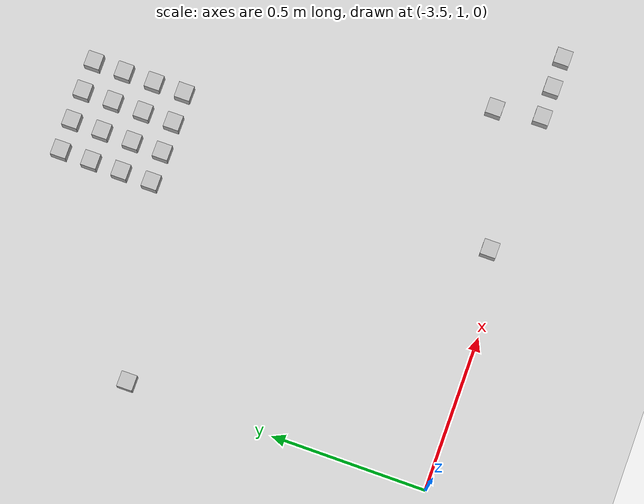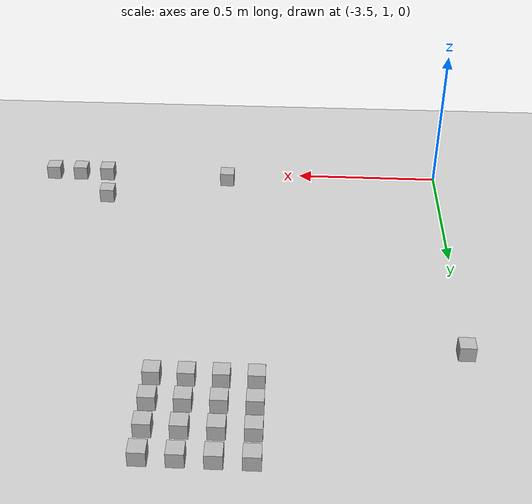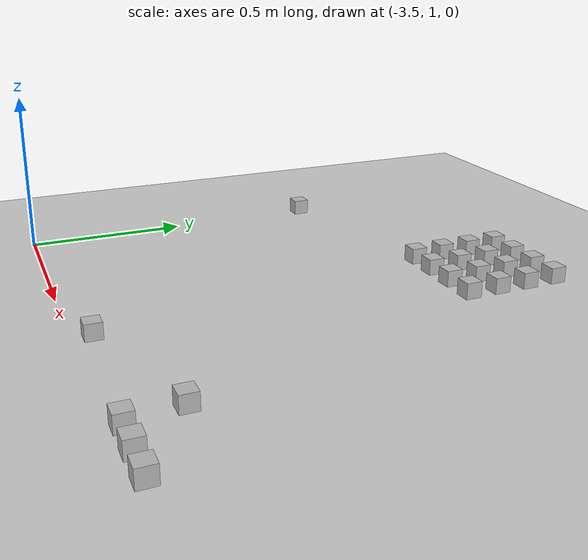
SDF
<sdf version="1.6">
 <world name="default">
  <model name="ground_plane">
   <static>1</static>
   <link name="link">
    <collision name="collision">
     <geometry><plane><normal>0 0 1</normal><size>100 100</size></plane></geometry>
     <surface><friction><ode><mu>100</mu><mu2>50</mu2></ode></friction></surface>
    </collision>
    <visual name="visual">
     <cast_shadows>0</cast_shadows>
     <geometry><plane><normal>0 0 1</normal><size>100 100</size></plane></geometry>
     <material>
      <script><uri>file://media/materials/scripts/gazebo.material</uri><name>Gazebo/Grey</name></script>
     </material>
    </visual>
   </link>
  </model>
  <model name="at25">
   <static>0</static>
   <link name="link">
    <inertial>
     <mass>0.01</mass>
     <inertia><ixx>4e-05</ixx><ixy>0</ixy><ixz>0</ixz><iyy>4e-05</iyy><iyz>0</iyz><izz>4e-05</izz></inertia>
    </inertial>
    <visual name="visual">
     <geometry><box><size>0.05 0.05 0.05</size></box></geometry>
     <material>
      <script>
       <uri>model://at0/materials/scripts</uri>
       <uri>model://at0/materials/textures</uri>
       <name>at0/Diffuse</name>
      </script>
     </material>
    </visual>
    <collision name="collision">
     <geometry><box><size>0.05 0.05 0.05</size></box></geometry>
     <surface><friction><ode><mu>0.8</mu><mu2>0.7</mu2></ode></friction></surface>
    </collision>
   </link>
   <pose>-2.28131 1.03932 0.025 0 -0 0</pose>
  </model>
  <model name="at26">
   <static>0</static>
   <link name="link">
    <inertial>
     <mass>0.01</mass>
     <inertia><ixx>4e-05</ixx><ixy>0</ixy><ixz>0</ixz><iyy>4e-05</iyy><iyz>0</iyz><izz>4e-05</izz></inertia>
    </inertial>
    <visual name="visual">
     <geometry><box><size>0.05 0.05 0.05</size></box></geometry>
     <material>
      <script>
       <uri>model://at0/materials/scripts</uri>
       <uri>model://at0/materials/textures</uri>
       <name>at0/Diffuse</name>
      </script>
     </material>
    </visual>
    <collision name="collision">
     <geometry><box><size>0.05 0.05 0.05</size></box></geometry>
     <surface><friction><ode><mu>0.8</mu><mu2>0.7</mu2></ode></friction></surface>
    </collision>
   </link>
   <pose>-2.18131 1.03932 0.025 0 -0 0</pose>
  </model>
  <model name="at27">
   <static>0</static>
   <link name="link">
    <inertial>
     <mass>0.01</mass>
     <inertia><ixx>4e-05</ixx><ixy>0</ixy><ixz>0</ixz><iyy>4e-05</iyy><iyz>0</iyz><izz>4e-05</izz></inertia>
    </inertial>
    <visual name="visual">
     <geometry><box><size>0.05 0.05 0.05</size></box></geometry>
     <material>
      <script>
       <uri>model://at0/materials/scripts</uri>
       <uri>model://at0/materials/textures</uri>
       <name>at0/Diffuse</name>
      </script>
     </material>
    </visual>
    <collision name="collision">
     <geometry><box><size>0.05 0.05 0.05</size></box></geometry>
     <surface><friction><ode><mu>0.8</mu><mu2>0.7</mu2></ode></friction></surface>
    </collision>
   </link>
   <pose>-2.08131 1.03932 0.025 0 -0 0</pose>
  </model>
  <model name="at48">
   <static>0</static>
   <link name="link">
    <inertial>
     <mass>0.01</mass>
     <inertia><ixx>4e-05</ixx><ixy>0</ixy><ixz>0</ixz><iyy>4e-05</iyy><iyz>0</iyz><izz>4e-05</izz></inertia>
    </inertial>
    <visual name="visual">
     <geometry><box><size>0.05 0.05 0.05</size></box></geometry>
     <material>
      <script>
       <uri>model://at0/materials/scripts</uri>
       <uri>model://at0/materials/textures</uri>
       <name>at0/Diffuse</name>
      </script>
     </material>
    </visual>
    <collision name="collision">
     <geometry><box><size>0.05 0.05 0.05</size></box></geometry>
     <surface><friction><ode><mu>0.8</mu><mu2>0.7</mu2></ode></friction></surface>
    </collision>
   </link>
   <pose>-2.88153 2.11714 0.025 0 -0 0</pose>
  </model>
  <model name="at49">
   <static>0</static>
   <link name="link">
    <inertial>
     <mass>0.01</mass>
     <inertia><ixx>4e-05</ixx><ixy>0</ixy><ixz>0</ixz><iyy>4e-05</iyy><iyz>0</iyz><izz>4e-05</izz></inertia>
    </inertial>
    <visual name="visual">
     <geometry><box><size>0.05 0.05 0.05</size></box></geometry>
     <material>
      <script>
       <uri>model://at0/materials/scripts</uri>
       <uri>model://at0/materials/textures</uri>
       <name>at0/Diffuse</name>
      </script>
     </material>
    </visual>
    <collision name="collision">
     <geometry><box><size>0.05 0.05 0.05</size></box></geometry>
     <surface><friction><ode><mu>0.8</mu><mu2>0.7</mu2></ode></friction></surface>
    </collision>
   </link>
   <pose>-2.78153 2.11714 0.025 0 -0 0</pose>
  </model>
  <model name="at50">
   <static>0</static>
   <link name="link">
    <inertial>
     <mass>0.01</mass>
     <inertia><ixx>4e-05</ixx><ixy>0</ixy><ixz>0</ixz><iyy>4e-05</iyy><iyz>0</iyz><izz>4e-05</izz></inertia>
    </inertial>
    <visual name="visual">
     <geometry><box><size>0.05 0.05 0.05</size></box></geometry>
     <material>
      <script>
       <uri>model://at0/materials/scripts</uri>
       <uri>model://at0/materials/textures</uri>
       <name>at0/Diffuse</name>
      </script>
     </material>
    </visual>
    <collision name="collision">
     <geometry><box><size>0.05 0.05 0.05</size></box></geometry>
     <surface><friction><ode><mu>0.8</mu><mu2>0.7</mu2></ode></friction></surface>
    </collision>
   </link>
   <pose>-2.68153 2.11714 0.025 0 -0 0</pose>
  </model>
  <model name="at51">
   <static>0</static>
   <link name="link">
    <inertial>
     <mass>0.01</mass>
     <inertia><ixx>4e-05</ixx><ixy>0</ixy><ixz>0</ixz><iyy>4e-05</iyy><iyz>0</iyz><izz>4e-05</izz></inertia>
    </inertial>
    <visual name="visual">
     <geometry><box><size>0.05 0.05 0.05</size></box></geometry>
     <material>
      <script>
       <uri>model://at0/materials/scripts</uri>
       <uri>model://at0/materials/textures</uri>
       <name>at0/Diffuse</name>
      </script>
     </material>
    </visual>
    <collision name="collision">
     <geometry><box><size>0.05 0.05 0.05</size></box></geometry>
     <surface><friction><ode><mu>0.8</mu><mu2>0.7</mu2></ode></friction></surface>
    </collision>
   </link>
   <pose>-2.58153 2.11714 0.025 0 -0 0</pose>
  </model>
  <model name="at52">
   <static>0</static>
   <link name="link">
    <inertial>
     <mass>0.01</mass>
     <inertia><ixx>4e-05</ixx><ixy>0</ixy><ixz>0</ixz><iyy>4e-05</iyy><iyz>0</iyz><izz>4e-05</izz></inertia>
    </inertial>
    <visual name="visual">
     <geometry><box><size>0.05 0.05 0.05</size></box></geometry>
     <material>
      <script>
       <uri>model://at0/materials/scripts</uri>
       <uri>model://at0/materials/textures</uri>
       <name>at0/Diffuse</name>
      </script>
     </material>
    </visual>
    <collision name="collision">
     <geometry><box><size>0.05 0.05 0.05</size></box></geometry>
     <surface><friction><ode><mu>0.8</mu><mu2>0.7</mu2></ode></friction></surface>
    </collision>
   </link>
   <pose>-2.88153 2.21714 0.025 0 -0 0</pose>
  </model>
  <model name="at53">
   <static>0</static>
   <link name="link">
    <inertial>
     <mass>0.01</mass>
     <inertia><ixx>4e-05</ixx><ixy>0</ixy><ixz>0</ixz><iyy>4e-05</iyy><iyz>0</iyz><izz>4e-05</izz></inertia>
    </inertial>
    <visual name="visual">
     <geometry><box><size>0.05 0.05 0.05</size></box></geometry>
     <material>
      <script>
       <uri>model://at0/materials/scripts</uri>
       <uri>model://at0/materials/textures</uri>
       <name>at0/Diffuse</name>
      </script>
     </material>
    </visual>
    <collision name="collision">
     <geometry><box><size>0.05 0.05 0.05</size></box></geometry>
     <surface><friction><ode><mu>0.8</mu><mu2>0.7</mu2></ode></friction></surface>
    </collision>
   </link>
   <pose>-2.78153 2.21714 0.025 0 -0 0</pose>
  </model>
  <model name="at54">
   <static>0</static>
   <link name="link">
    <inertial>
     <mass>0.01</mass>
     <inertia><ixx>4e-05</ixx><ixy>0</ixy><ixz>0</ixz><iyy>4e-05</iyy><iyz>0</iyz><izz>4e-05</izz></inertia>
    </inertial>
    <visual name="visual">
     <geometry><box><size>0.05 0.05 0.05</size></box></geometry>
     <material>
      <script>
       <uri>model://at0/materials/scripts</uri>
       <uri>model://at0/materials/textures</uri>
       <name>at0/Diffuse</name>
      </script>
     </material>
    </visual>
    <collision name="collision">
     <geometry><box><size>0.05 0.05 0.05</size></box></geometry>
     <surface><friction><ode><mu>0.8</mu><mu2>0.7</mu2></ode></friction></surface>
    </collision>
   </link>
   <pose>-2.68153 2.21714 0.025 0 -0 0</pose>
  </model>
  <model name="at55">
   <static>0</static>
   <link name="link">
    <inertial>
     <mass>0.01</mass>
     <inertia><ixx>4e-05</ixx><ixy>0</ixy><ixz>0</ixz><iyy>4e-05</iyy><iyz>0</iyz><izz>4e-05</izz></inertia>
    </inertial>
    <visual name="visual">
     <geometry><box><size>0.05 0.05 0.05</size></box></geometry>
     <material>
      <script>
       <uri>model://at0/materials/scripts</uri>
       <uri>model://at0/materials/textures</uri>
       <name>at0/Diffuse</name>
      </script>
     </material>
    </visual>
    <collision name="collision">
     <geometry><box><size>0.05 0.05 0.05</size></box></geometry>
     <surface><friction><ode><mu>0.8</mu><mu2>0.7</mu2></ode></friction></surface>
    </collision>
   </link>
   <pose>-2.58153 2.21714 0.025 0 -0 0</pose>
  </model>
  <model name="at56">
   <static>0</static>
   <link name="link">
    <inertial>
     <mass>0.01</mass>
     <inertia><ixx>4e-05</ixx><ixy>0</ixy><ixz>0</ixz><iyy>4e-05</iyy><iyz>0</iyz><izz>4e-05</izz></inertia>
    </inertial>
    <visual name="visual">
     <geometry><box><size>0.05 0.05 0.05</size></box></geometry>
     <material>
      <script>
       <uri>model://at0/materials/scripts</uri>
       <uri>model://at0/materials/textures</uri>
       <name>at0/Diffuse</name>
      </script>
     </material>
    </visual>
    <collision name="collision">
     <geometry><box><size>0.05 0.05 0.05</size></box></geometry>
     <surface><friction><ode><mu>0.8</mu><mu2>0.7</mu2></ode></friction></surface>
    </collision>
   </link>
   <pose>-2.88153 2.31714 0.025 0 -0 0</pose>
  </model>
  <model name="at57">
   <static>0</static>
   <link name="link">
    <inertial>
     <mass>0.01</mass>
     <inertia><ixx>4e-05</ixx><ixy>0</ixy><ixz>0</ixz><iyy>4e-05</iyy><iyz>0</iyz><izz>4e-05</izz></inertia>
    </inertial>
    <visual name="visual">
     <geometry><box><size>0.05 0.05 0.05</size></box></geometry>
     <material>
      <script>
       <uri>model://at0/materials/scripts</uri>
       <uri>model://at0/materials/textures</uri>
       <name>at0/Diffuse</name>
      </script>
     </material>
    </visual>
    <collision name="collision">
     <geometry><box><size>0.05 0.05 0.05</size></box></geometry>
     <surface><friction><ode><mu>0.8</mu><mu2>0.7</mu2></ode></friction></surface>
    </collision>
   </link>
   <pose>-2.78153 2.31714 0.025 0 -0 0</pose>
  </model>
  <model name="at58">
   <static>0</static>
   <link name="link">
    <inertial>
     <mass>0.01</mass>
     <inertia><ixx>4e-05</ixx><ixy>0</ixy><ixz>0</ixz><iyy>4e-05</iyy><iyz>0</iyz><izz>4e-05</izz></inertia>
    </inertial>
    <visual name="visual">
     <geometry><box><size>0.05 0.05 0.05</size></box></geometry>
     <material>
      <script>
       <uri>model://at0/materials/scripts</uri>
       <uri>model://at0/materials/textures</uri>
       <name>at0/Diffuse</name>
      </script>
     </material>
    </visual>
    <collision name="collision">
     <geometry><box><size>0.05 0.05 0.05</size></box></geometry>
     <surface><friction><ode><mu>0.8</mu><mu2>0.7</mu2></ode></friction></surface>
    </collision>
   </link>
   <pose>-2.68153 2.31714 0.025 0 -0 0</pose>
  </model>
  <model name="at59">
   <static>0</static>
   <link name="link">
    <inertial>
     <mass>0.01</mass>
     <inertia><ixx>4e-05</ixx><ixy>0</ixy><ixz>0</ixz><iyy>4e-05</iyy><iyz>0</iyz><izz>4e-05</izz></inertia>
    </inertial>
    <visual name="visual">
     <geometry><box><size>0.05 0.05 0.05</size></box></geometry>
     <material>
      <script>
       <uri>model://at0/materials/scripts</uri>
       <uri>model://at0/materials/textures</uri>
       <name>at0/Diffuse</name>
      </script>
     </material>
    </visual>
    <collision name="collision">
     <geometry><box><size>0.05 0.05 0.05</size></box></geometry>
     <surface><friction><ode><mu>0.8</mu><mu2>0.7</mu2></ode></friction></surface>
    </collision>
   </link>
   <pose>-2.58153 2.31714 0.025 0 -0 0</pose>
  </model>
  <model name="at60">
   <static>0</static>
   <link name="link">
    <inertial>
     <mass>0.01</mass>
     <inertia><ixx>4e-05</ixx><ixy>0</ixy><ixz>0</ixz><iyy>4e-05</iyy><iyz>0</iyz><izz>4e-05</izz></inertia>
    </inertial>
    <visual name="visual">
     <geometry><box><size>0.05 0.05 0.05</size></box></geometry>
     <material>
      <script>
       <uri>model://at0/materials/scripts</uri>
       <uri>model://at0/materials/textures</uri>
       <name>at0/Diffuse</name>
      </script>
     </material>
    </visual>
    <collision name="collision">
     <geometry><box><size>0.05 0.05 0.05</size></box></geometry>
     <surface><friction><ode><mu>0.8</mu><mu2>0.7</mu2></ode></friction></surface>
    </collision>
   </link>
   <pose>-2.88153 2.41714 0.025 0 -0 0</pose>
  </model>
  <model name="at61">
   <static>0</static>
   <link name="link">
    <inertial>
     <mass>0.01</mass>
     <inertia><ixx>4e-05</ixx><ixy>0</ixy><ixz>0</ixz><iyy>4e-05</iyy><iyz>0</iyz><izz>4e-05</izz></inertia>
    </inertial>
    <visual name="visual">
     <geometry><box><size>0.05 0.05 0.05</size></box></geometry>
     <material>
      <script>
       <uri>model://at0/materials/scripts</uri>
       <uri>model://at0/materials/textures</uri>
       <name>at0/Diffuse</name>
      </script>
     </material>
    </visual>
    <collision name="collision">
     <geometry><box><size>0.05 0.05 0.05</size></box></geometry>
     <surface><friction><ode><mu>0.8</mu><mu2>0.7</mu2></ode></friction></surface>
    </collision>
   </link>
   <pose>-2.78153 2.41714 0.025 0 -0 0</pose>
  </model>
  <model name="at62">
   <static>0</static>
   <link name="link">
    <inertial>
     <mass>0.01</mass>
     <inertia><ixx>4e-05</ixx><ixy>0</ixy><ixz>0</ixz><iyy>4e-05</iyy><iyz>0</iyz><izz>4e-05</izz></inertia>
    </inertial>
    <visual name="visual">
     <geometry><box><size>0.05 0.05 0.05</size></box></geometry>
     <material>
      <script>
       <uri>model://at0/materials/scripts</uri>
       <uri>model://at0/materials/textures</uri>
       <name>at0/Diffuse</name>
      </script>
     </material>
    </visual>
    <collision name="collision">
     <geometry><box><size>0.05 0.05 0.05</size></box></geometry>
     <surface><friction><ode><mu>0.8</mu><mu2>0.7</mu2></ode></friction></surface>
    </collision>
   </link>
   <pose>-2.68153 2.41714 0.025 0 -0 0</pose>
  </model>
  <model name="at63">
   <static>0</static>
   <link name="link">
    <inertial>
     <mass>0.01</mass>
     <inertia><ixx>4e-05</ixx><ixy>0</ixy><ixz>0</ixz><iyy>4e-05</iyy><iyz>0</iyz><izz>4e-05</izz></inertia>
    </inertial>
    <visual name="visual">
     <geometry><box><size>0.05 0.05 0.05</size></box></geometry>
     <material>
      <script>
       <uri>model://at0/materials/scripts</uri>
       <uri>model://at0/materials/textures</uri>
       <name>at0/Diffuse</name>
      </script>
     </material>
    </visual>
    <collision name="collision">
     <geometry><box><size>0.05 0.05 0.05</size></box></geometry>
     <surface><friction><ode><mu>0.8</mu><mu2>0.7</mu2></ode></friction></surface>
    </collision>
   </link>
   <pose>-2.58153 2.41714 0.025 0 -0 0</pose>
  </model>
  <model name="at99">
   <static>0</static>
   <link name="link">
    <inertial>
     <mass>0.01</mass>
     <inertia><ixx>4e-05</ixx><ixy>0</ixy><ixz>0</ixz><iyy>4e-05</iyy><iyz>0</iyz><izz>4e-05</izz></inertia>
    </inertial>
    <visual name="visual">
     <geometry><box><size>0.05 0.05 0.05</size></box></geometry>
     <material>
      <script>
       <uri>model://at0/materials/scripts</uri>
       <uri>model://at0/materials/textures</uri>
       <name>at0/Diffuse</name>
      </script>
     </material>
    </visual>
    <collision name="collision">
     <geometry><box><size>0.05 0.05 0.05</size></box></geometry>
     <surface><friction><ode><mu>0.8</mu><mu2>0.7</mu2></ode></friction></surface>
    </collision>
   </link>
   <pose>-3.49247 1.9722 0.025 0 -0 0</pose>
  </model>
  <model name="at112">
   <static>0</static>
   <link name="link">
    <inertial>
     <mass>0.01</mass>
     <inertia><ixx>4e-05</ixx><ixy>0</ixy><ixz>0</ixz><iyy>4e-05</iyy><iyz>0</iyz><izz>4e-05</izz></inertia>
    </inertial>
    <visual name="visual">
     <geometry><box><size>0.05 0.05 0.05</size></box></geometry>
     <material>
      <script>
       <uri>model://at0/materials/scripts</uri>
       <uri>model://at0/materials/textures</uri>
       <name>at0/Diffuse</name>
      </script>
     </material>
    </visual>
    <collision name="collision">
     <geometry><box><size>0.05 0.05 0.05</size></box></geometry>
     <surface><friction><ode><mu>0.8</mu><mu2>0.7</mu2></ode></friction></surface>
    </collision>
   </link>
   <pose>-2.73163 1.05775 0.025 0 -0 0</pose>
  </model>
  <model name="at126">
   <static>0</static>
   <link name="link">
    <inertial>
     <mass>0.01</mass>
     <inertia><ixx>4e-05</ixx><ixy>0</ixy><ixz>0</ixz><iyy>4e-05</iyy><iyz>0</iyz><izz>4e-05</izz></inertia>
    </inertial>
    <visual name="visual">
     <geometry><box><size>0.05 0.05 0.05</size></box></geometry>
     <material>
      <script>
       <uri>model://at0/materials/scripts</uri>
       <uri>model://at0/materials/textures</uri>
       <name>at0/Diffuse</name>
      </script>
     </material>
    </visual>
    <collision name="collision">
     <geometry><box><size>0.05 0.05 0.05</size></box></geometry>
     <surface><friction><ode><mu>0.8</mu><mu2>0.7</mu2></ode></friction></surface>
    </collision>
   </link>
   <pose>-2.30441 1.18764 0.025 0 -0 0</pose>
  </model>
 </world>
</sdf>
